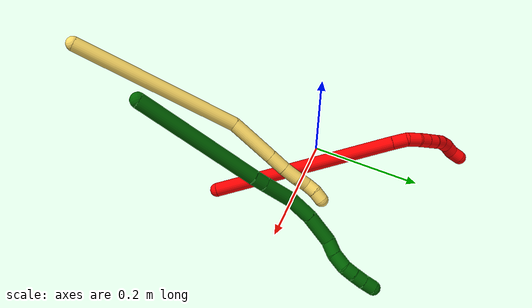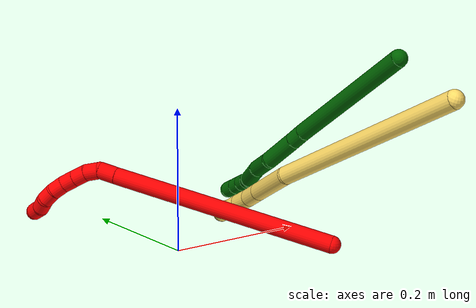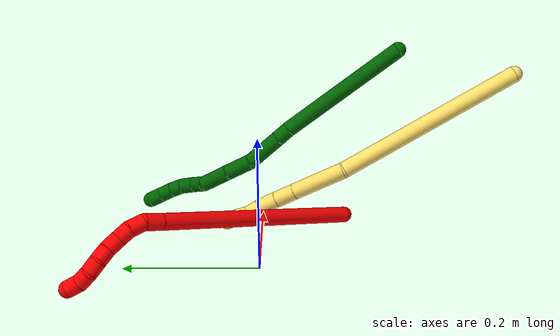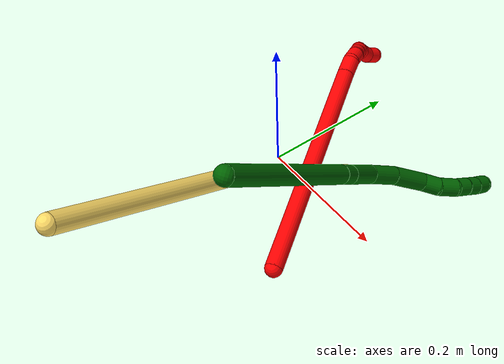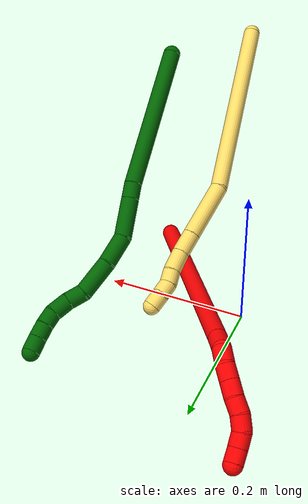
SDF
<sdf version="1.7">
 <world name="default">
  <model name="2">
   <static>0</static>
   <link name="2">
    <collision name="collision-cylinder-e_1_1_4">
     <pose>-0.092895 0.13589 -0.008558 -1.63369 -0.598713 0.635111</pose>
     <geometry><cylinder><radius>0.0125</radius><length>0.32966</length></cylinder></geometry>
     <surface>
      <friction><ode><mu>1.16</mu><mu2>1.16</mu2><slip1>0</slip1><slip2>0</slip2></ode></friction>
      <contact><ode><kp>1e+06</kp><kd>1</kd><max_vel>0</max_vel><min_depth>0.001</min_depth></ode></contact>
     </surface>
    </collision>
    <visual name="visual-cylinder-e_1_1_4">
     <pose>-0.092895 0.13589 -0.008558 -1.63369 -0.598713 0.635111</pose>
     <geometry><cylinder><radius>0.0125</radius><length>0.32966</length></cylinder></geometry>
     <material><ambient>1 0 0 1</ambient></material>
    </visual>
    <collision name="collision-cylinder-e_2_4_5">
     <pose>-0.19285 0.282997 -0.017759 -1.62815 -0.561037 0.592321</pose>
     <geometry><cylinder><radius>0.0125</radius><length>0.026538</length></cylinder></geometry>
     <surface>
      <friction><ode><mu>1.16</mu><mu2>1.16</mu2><slip1>0</slip1><slip2>0</slip2></ode></friction>
      <contact><ode><kp>1e+06</kp><kd>1</kd><max_vel>0</max_vel><min_depth>0.001</min_depth></ode></contact>
     </surface>
    </collision>
    <visual name="visual-cylinder-e_2_4_5">
     <pose>-0.19285 0.282997 -0.017759 -1.62815 -0.561037 0.592321</pose>
     <geometry><cylinder><radius>0.0125</radius><length>0.026538</length></cylinder></geometry>
     <material><ambient>1 0 0 1</ambient></material>
    </visual>
    <collision name="collision-cylinder-e_3_5_6">
     <pose>-0.205943 0.302505 -0.024125 -2.17489 -0.539646 0.969894</pose>
     <geometry><cylinder><radius>0.0125</radius><length>0.023486</length></cylinder></geometry>
     <surface>
      <friction><ode><mu>1.16</mu><mu2>1.16</mu2><slip1>0</slip1><slip2>0</slip2></ode></friction>
      <contact><ode><kp>1e+06</kp><kd>1</kd><max_vel>0</max_vel><min_depth>0.001</min_depth></ode></contact>
     </surface>
    </collision>
    <visual name="visual-cylinder-e_3_5_6">
     <pose>-0.205943 0.302505 -0.024125 -2.17489 -0.539646 0.969894</pose>
     <geometry><cylinder><radius>0.0125</radius><length>0.023486</length></cylinder></geometry>
     <material><ambient>1 0 0 1</ambient></material>
    </visual>
    <collision name="collision-cylinder-e_4_6_7">
     <pose>-0.217566 0.315826 -0.036661 -2.50567 -0.583335 1.47903</pose>
     <geometry><cylinder><radius>0.0125</radius><length>0.020294</length></cylinder></geometry>
     <surface>
      <friction><ode><mu>1.16</mu><mu2>1.16</mu2><slip1>0</slip1><slip2>0</slip2></ode></friction>
      <contact><ode><kp>1e+06</kp><kd>1</kd><max_vel>0</max_vel><min_depth>0.001</min_depth></ode></contact>
     </surface>
    </collision>
    <visual name="visual-cylinder-e_4_6_7">
     <pose>-0.217566 0.315826 -0.036661 -2.50567 -0.583335 1.47903</pose>
     <geometry><cylinder><radius>0.0125</radius><length>0.020294</length></cylinder></geometry>
     <material><ambient>1 0 0 1</ambient></material>
    </visual>
    <collision name="collision-cylinder-e_5_7_8">
     <pose>-0.228619 0.32574 -0.050294 -2.52005 -0.577308 1.49243</pose>
     <geometry><cylinder><radius>0.0125</radius><length>0.02002</length></cylinder></geometry>
     <surface>
      <friction><ode><mu>1.16</mu><mu2>1.16</mu2><slip1>0</slip1><slip2>0</slip2></ode></friction>
      <contact><ode><kp>1e+06</kp><kd>1</kd><max_vel>0</max_vel><min_depth>0.001</min_depth></ode></contact>
     </surface>
    </collision>
    <visual name="visual-cylinder-e_5_7_8">
     <pose>-0.228619 0.32574 -0.050294 -2.52005 -0.577308 1.49243</pose>
     <geometry><cylinder><radius>0.0125</radius><length>0.02002</length></cylinder></geometry>
     <material><ambient>1 0 0 1</ambient></material>
    </visual>
    <collision name="collision-cylinder-e_6_8_9">
     <pose>-0.239961 0.333999 -0.064465 -2.71121 -0.628417 1.95741</pose>
     <geometry><cylinder><radius>0.0125</radius><length>0.020001</length></cylinder></geometry>
     <surface>
      <friction><ode><mu>1.16</mu><mu2>1.16</mu2><slip1>0</slip1><slip2>0</slip2></ode></friction>
      <contact><ode><kp>1e+06</kp><kd>1</kd><max_vel>0</max_vel><min_depth>0.001</min_depth></ode></contact>
     </surface>
    </collision>
    <visual name="visual-cylinder-e_6_8_9">
     <pose>-0.239961 0.333999 -0.064465 -2.71121 -0.628417 1.95741</pose>
     <geometry><cylinder><radius>0.0125</radius><length>0.020001</length></cylinder></geometry>
     <material><ambient>1 0 0 1</ambient></material>
    </visual>
    <collision name="collision-cylinder-e_7_9_10">
     <pose>-0.249487 0.340876 -0.080445 -2.75609 -0.373338 1.53797</pose>
     <geometry><cylinder><radius>0.0125</radius><length>0.02</length></cylinder></geometry>
     <surface>
      <friction><ode><mu>1.16</mu><mu2>1.16</mu2><slip1>0</slip1><slip2>0</slip2></ode></friction>
      <contact><ode><kp>1e+06</kp><kd>1</kd><max_vel>0</max_vel><min_depth>0.001</min_depth></ode></contact>
     </surface>
    </collision>
    <visual name="visual-cylinder-e_7_9_10">
     <pose>-0.249487 0.340876 -0.080445 -2.75609 -0.373338 1.53797</pose>
     <geometry><cylinder><radius>0.0125</radius><length>0.02</length></cylinder></geometry>
     <material><ambient>1 0 0 1</ambient></material>
    </visual>
    <collision name="collision-cylinder-e_8_10_11">
     <pose>-0.253103 0.348627 -0.098126 -2.70272 0.003173 -0.014227</pose>
     <geometry><cylinder><radius>0.0125</radius><length>0.020001</length></cylinder></geometry>
     <surface>
      <friction><ode><mu>1.16</mu><mu2>1.16</mu2><slip1>0</slip1><slip2>0</slip2></ode></friction>
      <contact><ode><kp>1e+06</kp><kd>1</kd><max_vel>0</max_vel><min_depth>0.001</min_depth></ode></contact>
     </surface>
    </collision>
    <visual name="visual-cylinder-e_8_10_11">
     <pose>-0.253103 0.348627 -0.098126 -2.70272 0.003173 -0.014227</pose>
     <geometry><cylinder><radius>0.0125</radius><length>0.020001</length></cylinder></geometry>
     <material><ambient>1 0 0 1</ambient></material>
    </visual>
    <collision name="collision-cylinder-e_9_11_2">
     <pose>-0.25349 0.359837 -0.114346 -2.37087 -0.041908 0.103236</pose>
     <geometry><cylinder><radius>0.0125</radius><length>0.02</length></cylinder></geometry>
     <surface>
      <friction><ode><mu>1.16</mu><mu2>1.16</mu2><slip1>0</slip1><slip2>0</slip2></ode></friction>
      <contact><ode><kp>1e+06</kp><kd>1</kd><max_vel>0</max_vel><min_depth>0.001</min_depth></ode></contact>
     </surface>
    </collision>
    <visual name="visual-cylinder-e_9_11_2">
     <pose>-0.25349 0.359837 -0.114346 -2.37087 -0.041908 0.103236</pose>
     <geometry><cylinder><radius>0.0125</radius><length>0.02</length></cylinder></geometry>
     <material><ambient>1 0 0 1</ambient></material>
    </visual>
    <collision name="collision-sphere-2">
     <pose>-0.253909 0.366797 -0.121514 0 -0 0</pose>
     <geometry><sphere><radius>0.0125</radius></sphere></geometry>
     <surface>
      <friction><ode><mu>1.16</mu><mu2>1.16</mu2><slip1>0</slip1><slip2>0</slip2></ode></friction>
      <contact><ode><kp>1e+06</kp><kd>1</kd><max_vel>0</max_vel><min_depth>0.001</min_depth></ode></contact>
     </surface>
    </collision>
    <visual name="visual-sphere-2">
     <pose>-0.253909 0.366797 -0.121514 0 -0 0</pose>
     <geometry><sphere><radius>0.0125</radius></sphere></geometry>
     <material><ambient>1 0 0 1</ambient></material>
    </visual>
    <collision name="collision-sphere-11">
     <pose>-0.253071 0.352876 -0.107178 0 -0 0</pose>
     <geometry><sphere><radius>0.0125</radius></sphere></geometry>
     <surface>
      <friction><ode><mu>1.16</mu><mu2>1.16</mu2><slip1>0</slip1><slip2>0</slip2></ode></friction>
      <contact><ode><kp>1e+06</kp><kd>1</kd><max_vel>0</max_vel><min_depth>0.001</min_depth></ode></contact>
     </surface>
    </collision>
    <visual name="visual-sphere-11">
     <pose>-0.253071 0.352876 -0.107178 0 -0 0</pose>
     <geometry><sphere><radius>0.0125</radius></sphere></geometry>
     <material><ambient>1 0 0 1</ambient></material>
    </visual>
    <collision name="collision-sphere-10">
     <pose>-0.253134 0.344377 -0.089073 0 -0 0</pose>
     <geometry><sphere><radius>0.0125</radius></sphere></geometry>
     <surface>
      <friction><ode><mu>1.16</mu><mu2>1.16</mu2><slip1>0</slip1><slip2>0</slip2></ode></friction>
      <contact><ode><kp>1e+06</kp><kd>1</kd><max_vel>0</max_vel><min_depth>0.001</min_depth></ode></contact>
     </surface>
    </collision>
    <visual name="visual-sphere-10">
     <pose>-0.253134 0.344377 -0.089073 0 -0 0</pose>
     <geometry><sphere><radius>0.0125</radius></sphere></geometry>
     <material><ambient>1 0 0 1</ambient></material>
    </visual>
    <collision name="collision-sphere-9">
     <pose>-0.24584 0.337375 -0.071817 0 -0 0</pose>
     <geometry><sphere><radius>0.0125</radius></sphere></geometry>
     <surface>
      <friction><ode><mu>1.16</mu><mu2>1.16</mu2><slip1>0</slip1><slip2>0</slip2></ode></friction>
      <contact><ode><kp>1e+06</kp><kd>1</kd><max_vel>0</max_vel><min_depth>0.001</min_depth></ode></contact>
     </surface>
    </collision>
    <visual name="visual-sphere-9">
     <pose>-0.24584 0.337375 -0.071817 0 -0 0</pose>
     <geometry><sphere><radius>0.0125</radius></sphere></geometry>
     <material><ambient>1 0 0 1</ambient></material>
    </visual>
    <collision name="collision-sphere-4">
     <pose>-0.18579 0.271781 -0.017115 0 -0 0</pose>
     <geometry><sphere><radius>0.0125</radius></sphere></geometry>
     <surface>
      <friction><ode><mu>1.16</mu><mu2>1.16</mu2><slip1>0</slip1><slip2>0</slip2></ode></friction>
      <contact><ode><kp>1e+06</kp><kd>1</kd><max_vel>0</max_vel><min_depth>0.001</min_depth></ode></contact>
     </surface>
    </collision>
    <visual name="visual-sphere-4">
     <pose>-0.18579 0.271781 -0.017115 0 -0 0</pose>
     <geometry><sphere><radius>0.0125</radius></sphere></geometry>
     <material><ambient>1 0 0 1</ambient></material>
    </visual>
    <collision name="collision-sphere-1">
     <geometry><sphere><radius>0.0125</radius></sphere></geometry>
     <surface>
      <friction><ode><mu>1.16</mu><mu2>1.16</mu2><slip1>0</slip1><slip2>0</slip2></ode></friction>
      <contact><ode><kp>1e+06</kp><kd>1</kd><max_vel>0</max_vel><min_depth>0.001</min_depth></ode></contact>
     </surface>
    </collision>
    <visual name="visual-sphere-1">
     <geometry><sphere><radius>0.0125</radius></sphere></geometry>
     <material><ambient>1 0 0 1</ambient></material>
    </visual>
    <collision name="collision-sphere-8">
     <pose>-0.234082 0.330624 -0.057113 0 -0 0</pose>
     <geometry><sphere><radius>0.0125</radius></sphere></geometry>
     <surface>
      <friction><ode><mu>1.16</mu><mu2>1.16</mu2><slip1>0</slip1><slip2>0</slip2></ode></friction>
      <contact><ode><kp>1e+06</kp><kd>1</kd><max_vel>0</max_vel><min_depth>0.001</min_depth></ode></contact>
     </surface>
    </collision>
    <visual name="visual-sphere-8">
     <pose>-0.234082 0.330624 -0.057113 0 -0 0</pose>
     <geometry><sphere><radius>0.0125</radius></sphere></geometry>
     <material><ambient>1 0 0 1</ambient></material>
    </visual>
    <collision name="collision-sphere-5">
     <pose>-0.19991 0.294214 -0.018403 0 -0 0</pose>
     <geometry><sphere><radius>0.0125</radius></sphere></geometry>
     <surface>
      <friction><ode><mu>1.16</mu><mu2>1.16</mu2><slip1>0</slip1><slip2>0</slip2></ode></friction>
      <contact><ode><kp>1e+06</kp><kd>1</kd><max_vel>0</max_vel><min_depth>0.001</min_depth></ode></contact>
     </surface>
    </collision>
    <visual name="visual-sphere-5">
     <pose>-0.19991 0.294214 -0.018403 0 -0 0</pose>
     <geometry><sphere><radius>0.0125</radius></sphere></geometry>
     <material><ambient>1 0 0 1</ambient></material>
    </visual>
    <collision name="collision-sphere-6">
     <pose>-0.211977 0.310796 -0.029848 0 -0 0</pose>
     <geometry><sphere><radius>0.0125</radius></sphere></geometry>
     <surface>
      <friction><ode><mu>1.16</mu><mu2>1.16</mu2><slip1>0</slip1><slip2>0</slip2></ode></friction>
      <contact><ode><kp>1e+06</kp><kd>1</kd><max_vel>0</max_vel><min_depth>0.001</min_depth></ode></contact>
     </surface>
    </collision>
    <visual name="visual-sphere-6">
     <pose>-0.211977 0.310796 -0.029848 0 -0 0</pose>
     <geometry><sphere><radius>0.0125</radius></sphere></geometry>
     <material><ambient>1 0 0 1</ambient></material>
    </visual>
    <collision name="collision-sphere-7">
     <pose>-0.223155 0.320856 -0.043475 0 -0 0</pose>
     <geometry><sphere><radius>0.0125</radius></sphere></geometry>
     <surface>
      <friction><ode><mu>1.16</mu><mu2>1.16</mu2><slip1>0</slip1><slip2>0</slip2></ode></friction>
      <contact><ode><kp>1e+06</kp><kd>1</kd><max_vel>0</max_vel><min_depth>0.001</min_depth></ode></contact>
     </surface>
    </collision>
    <visual name="visual-sphere-7">
     <pose>-0.223155 0.320856 -0.043475 0 -0 0</pose>
     <geometry><sphere><radius>0.0125</radius></sphere></geometry>
     <material><ambient>1 0 0 1</ambient></material>
    </visual>
    <inertial>
     <pose>-0.138984 0.200021 -0.025515 0 -0 0</pose>
     <mass>0.5</mass>
     <inertia>
      <ixx>0.003457</ixx>
      <ixy>0</ixy>
      <ixz>0</ixz>
      <iyy>0.002355</iyy>
      <iyz>0</iyz>
      <izz>-0.000794</izz>
     </inertia>
    </inertial>
   </link>
   <pose>0.164917 -0.131739 0.011496 0.297833 0.033577 -0.021047</pose>
  </model>
  <model name="5">
   <static>0</static>
   <link name="5">
    <collision name="collision-cylinder-e_1_1_4">
     <pose>-0.004096 0.100109 -0.106374 -2.38652 -0.028032 0.070664</pose>
     <geometry><cylinder><radius>0.0125</radius><length>0.292261</length></cylinder></geometry>
     <surface>
      <friction><ode><mu>1.16</mu><mu2>1.16</mu2><slip1>0</slip1><slip2>0</slip2></ode></friction>
      <contact><ode><kp>1e+06</kp><kd>1</kd><max_vel>0</max_vel><min_depth>0.001</min_depth></ode></contact>
     </surface>
    </collision>
    <visual name="visual-cylinder-e_1_1_4">
     <pose>-0.004096 0.100109 -0.106374 -2.38652 -0.028032 0.070664</pose>
     <geometry><cylinder><radius>0.0125</radius><length>0.292261</length></cylinder></geometry>
     <material><ambient>1 0.858824 0.4 1</ambient></material>
    </visual>
    <collision name="collision-cylinder-e_2_4_5">
     <pose>0.003389 0.228441 -0.24232 -2.37955 0.276078 -0.667625</pose>
     <geometry><cylinder><radius>0.0125</radius><length>0.084973</length></cylinder></geometry>
     <surface>
      <friction><ode><mu>1.16</mu><mu2>1.16</mu2><slip1>0</slip1><slip2>0</slip2></ode></friction>
      <contact><ode><kp>1e+06</kp><kd>1</kd><max_vel>0</max_vel><min_depth>0.001</min_depth></ode></contact>
     </surface>
    </collision>
    <visual name="visual-cylinder-e_2_4_5">
     <pose>0.003389 0.228441 -0.24232 -2.37955 0.276078 -0.667625</pose>
     <geometry><cylinder><radius>0.0125</radius><length>0.084973</length></cylinder></geometry>
     <material><ambient>1 0.858824 0.4 1</ambient></material>
    </visual>
    <collision name="collision-cylinder-e_3_5_6">
     <pose>0.019423 0.26731 -0.283203 -2.38637 0.27916 -0.680834</pose>
     <geometry><cylinder><radius>0.0125</radius><length>0.032319</length></cylinder></geometry>
     <surface>
      <friction><ode><mu>1.16</mu><mu2>1.16</mu2><slip1>0</slip1><slip2>0</slip2></ode></friction>
      <contact><ode><kp>1e+06</kp><kd>1</kd><max_vel>0</max_vel><min_depth>0.001</min_depth></ode></contact>
     </surface>
    </collision>
    <visual name="visual-cylinder-e_3_5_6">
     <pose>0.019423 0.26731 -0.283203 -2.38637 0.27916 -0.680834</pose>
     <geometry><cylinder><radius>0.0125</radius><length>0.032319</length></cylinder></geometry>
     <material><ambient>1 0.858824 0.4 1</ambient></material>
    </visual>
    <collision name="collision-cylinder-e_4_6_7">
     <pose>0.026805 0.28834 -0.305185 -2.36999 0.194245 -0.470865</pose>
     <geometry><cylinder><radius>0.0125</radius><length>0.030348</length></cylinder></geometry>
     <surface>
      <friction><ode><mu>1.16</mu><mu2>1.16</mu2><slip1>0</slip1><slip2>0</slip2></ode></friction>
      <contact><ode><kp>1e+06</kp><kd>1</kd><max_vel>0</max_vel><min_depth>0.001</min_depth></ode></contact>
     </surface>
    </collision>
    <visual name="visual-cylinder-e_4_6_7">
     <pose>0.026805 0.28834 -0.305185 -2.36999 0.194245 -0.470865</pose>
     <geometry><cylinder><radius>0.0125</radius><length>0.030348</length></cylinder></geometry>
     <material><ambient>1 0.858824 0.4 1</ambient></material>
    </visual>
    <collision name="collision-cylinder-e_5_7_8">
     <pose>0.03018 0.305056 -0.32364 -2.45832 0.044441 -0.12484</pose>
     <geometry><cylinder><radius>0.0125</radius><length>0.020089</length></cylinder></geometry>
     <surface>
      <friction><ode><mu>1.16</mu><mu2>1.16</mu2><slip1>0</slip1><slip2>0</slip2></ode></friction>
      <contact><ode><kp>1e+06</kp><kd>1</kd><max_vel>0</max_vel><min_depth>0.001</min_depth></ode></contact>
     </surface>
    </collision>
    <visual name="visual-cylinder-e_5_7_8">
     <pose>0.03018 0.305056 -0.32364 -2.45832 0.044441 -0.12484</pose>
     <geometry><cylinder><radius>0.0125</radius><length>0.020089</length></cylinder></geometry>
     <material><ambient>1 0.858824 0.4 1</ambient></material>
    </visual>
    <collision name="collision-cylinder-e_6_8_9">
     <pose>0.033663 0.318893 -0.337302 -2.23568 0.308399 -0.618242</pose>
     <geometry><cylinder><radius>0.0125</radius><length>0.020006</length></cylinder></geometry>
     <surface>
      <friction><ode><mu>1.16</mu><mu2>1.16</mu2><slip1>0</slip1><slip2>0</slip2></ode></friction>
      <contact><ode><kp>1e+06</kp><kd>1</kd><max_vel>0</max_vel><min_depth>0.001</min_depth></ode></contact>
     </surface>
    </collision>
    <visual name="visual-cylinder-e_6_8_9">
     <pose>0.033663 0.318893 -0.337302 -2.23568 0.308399 -0.618242</pose>
     <geometry><cylinder><radius>0.0125</radius><length>0.020006</length></cylinder></geometry>
     <material><ambient>1 0.858824 0.4 1</ambient></material>
    </visual>
    <collision name="collision-cylinder-e_7_9_2">
     <pose>0.040944 0.332162 -0.350164 -2.45102 0.438363 -1.10898</pose>
     <geometry><cylinder><radius>0.0125</radius><length>0.020004</length></cylinder></geometry>
     <surface>
      <friction><ode><mu>1.16</mu><mu2>1.16</mu2><slip1>0</slip1><slip2>0</slip2></ode></friction>
      <contact><ode><kp>1e+06</kp><kd>1</kd><max_vel>0</max_vel><min_depth>0.001</min_depth></ode></contact>
     </surface>
    </collision>
    <visual name="visual-cylinder-e_7_9_2">
     <pose>0.040944 0.332162 -0.350164 -2.45102 0.438363 -1.10898</pose>
     <geometry><cylinder><radius>0.0125</radius><length>0.020004</length></cylinder></geometry>
     <material><ambient>1 0.858824 0.4 1</ambient></material>
    </visual>
    <collision name="collision-sphere-2">
     <pose>0.04519 0.337931 -0.357145 0 -0 0</pose>
     <geometry><sphere><radius>0.0125</radius></sphere></geometry>
     <surface>
      <friction><ode><mu>1.16</mu><mu2>1.16</mu2><slip1>0</slip1><slip2>0</slip2></ode></friction>
      <contact><ode><kp>1e+06</kp><kd>1</kd><max_vel>0</max_vel><min_depth>0.001</min_depth></ode></contact>
     </surface>
    </collision>
    <visual name="visual-sphere-2">
     <pose>0.04519 0.337931 -0.357145 0 -0 0</pose>
     <geometry><sphere><radius>0.0125</radius></sphere></geometry>
     <material><ambient>1 0.858824 0.4 1</ambient></material>
    </visual>
    <collision name="collision-sphere-9">
     <pose>0.036699 0.326393 -0.343182 0 -0 0</pose>
     <geometry><sphere><radius>0.0125</radius></sphere></geometry>
     <surface>
      <friction><ode><mu>1.16</mu><mu2>1.16</mu2><slip1>0</slip1><slip2>0</slip2></ode></friction>
      <contact><ode><kp>1e+06</kp><kd>1</kd><max_vel>0</max_vel><min_depth>0.001</min_depth></ode></contact>
     </surface>
    </collision>
    <visual name="visual-sphere-9">
     <pose>0.036699 0.326393 -0.343182 0 -0 0</pose>
     <geometry><sphere><radius>0.0125</radius></sphere></geometry>
     <material><ambient>1 0.858824 0.4 1</ambient></material>
    </visual>
    <collision name="collision-sphere-4">
     <pose>-0.008192 0.200219 -0.212748 0 -0 0</pose>
     <geometry><sphere><radius>0.0125</radius></sphere></geometry>
     <surface>
      <friction><ode><mu>1.16</mu><mu2>1.16</mu2><slip1>0</slip1><slip2>0</slip2></ode></friction>
      <contact><ode><kp>1e+06</kp><kd>1</kd><max_vel>0</max_vel><min_depth>0.001</min_depth></ode></contact>
     </surface>
    </collision>
    <visual name="visual-sphere-4">
     <pose>-0.008192 0.200219 -0.212748 0 -0 0</pose>
     <geometry><sphere><radius>0.0125</radius></sphere></geometry>
     <material><ambient>1 0.858824 0.4 1</ambient></material>
    </visual>
    <collision name="collision-sphere-1">
     <geometry><sphere><radius>0.0125</radius></sphere></geometry>
     <surface>
      <friction><ode><mu>1.16</mu><mu2>1.16</mu2><slip1>0</slip1><slip2>0</slip2></ode></friction>
      <contact><ode><kp>1e+06</kp><kd>1</kd><max_vel>0</max_vel><min_depth>0.001</min_depth></ode></contact>
     </surface>
    </collision>
    <visual name="visual-sphere-1">
     <geometry><sphere><radius>0.0125</radius></sphere></geometry>
     <material><ambient>1 0.858824 0.4 1</ambient></material>
    </visual>
    <collision name="collision-sphere-8">
     <pose>0.030627 0.311392 -0.331422 0 -0 0</pose>
     <geometry><sphere><radius>0.0125</radius></sphere></geometry>
     <surface>
      <friction><ode><mu>1.16</mu><mu2>1.16</mu2><slip1>0</slip1><slip2>0</slip2></ode></friction>
      <contact><ode><kp>1e+06</kp><kd>1</kd><max_vel>0</max_vel><min_depth>0.001</min_depth></ode></contact>
     </surface>
    </collision>
    <visual name="visual-sphere-8">
     <pose>0.030627 0.311392 -0.331422 0 -0 0</pose>
     <geometry><sphere><radius>0.0125</radius></sphere></geometry>
     <material><ambient>1 0.858824 0.4 1</ambient></material>
    </visual>
    <collision name="collision-sphere-5">
     <pose>0.014971 0.256662 -0.271892 0 -0 0</pose>
     <geometry><sphere><radius>0.0125</radius></sphere></geometry>
     <surface>
      <friction><ode><mu>1.16</mu><mu2>1.16</mu2><slip1>0</slip1><slip2>0</slip2></ode></friction>
      <contact><ode><kp>1e+06</kp><kd>1</kd><max_vel>0</max_vel><min_depth>0.001</min_depth></ode></contact>
     </surface>
    </collision>
    <visual name="visual-sphere-5">
     <pose>0.014971 0.256662 -0.271892 0 -0 0</pose>
     <geometry><sphere><radius>0.0125</radius></sphere></geometry>
     <material><ambient>1 0.858824 0.4 1</ambient></material>
    </visual>
    <collision name="collision-sphere-6">
     <pose>0.023876 0.277958 -0.294513 0 -0 0</pose>
     <geometry><sphere><radius>0.0125</radius></sphere></geometry>
     <surface>
      <friction><ode><mu>1.16</mu><mu2>1.16</mu2><slip1>0</slip1><slip2>0</slip2></ode></friction>
      <contact><ode><kp>1e+06</kp><kd>1</kd><max_vel>0</max_vel><min_depth>0.001</min_depth></ode></contact>
     </surface>
    </collision>
    <visual name="visual-sphere-6">
     <pose>0.023876 0.277958 -0.294513 0 -0 0</pose>
     <geometry><sphere><radius>0.0125</radius></sphere></geometry>
     <material><ambient>1 0.858824 0.4 1</ambient></material>
    </visual>
    <collision name="collision-sphere-7">
     <pose>0.029734 0.298721 -0.315858 0 -0 0</pose>
     <geometry><sphere><radius>0.0125</radius></sphere></geometry>
     <surface>
      <friction><ode><mu>1.16</mu><mu2>1.16</mu2><slip1>0</slip1><slip2>0</slip2></ode></friction>
      <contact><ode><kp>1e+06</kp><kd>1</kd><max_vel>0</max_vel><min_depth>0.001</min_depth></ode></contact>
     </surface>
    </collision>
    <visual name="visual-sphere-7">
     <pose>0.029734 0.298721 -0.315858 0 -0 0</pose>
     <geometry><sphere><radius>0.0125</radius></sphere></geometry>
     <material><ambient>1 0.858824 0.4 1</ambient></material>
    </visual>
    <inertial>
     <pose>0.005262 0.170423 -0.180697 0 -0 0</pose>
     <mass>0.5</mass>
     <inertia>
      <ixx>0.002249</ixx>
      <ixy>0</ixy>
      <ixz>0</ixz>
      <iyy>-0.001411</iyy>
      <iyz>0</iyz>
      <izz>-0.001464</izz>
     </inertia>
    </inertial>
   </link>
   <pose>0.129913 -0.380864 0.256217 0.326145 0.089652 0.091641</pose>
  </model>
  <model name="6">
   <static>0</static>
   <link name="6">
    <collision name="collision-cylinder-e_1_1_4">
     <pose>0.076473 -0.034663 -0.065926 2.65754 0.798578 2.08288</pose>
     <geometry><cylinder><radius>0.0125</radius><length>0.213504</length></cylinder></geometry>
     <surface>
      <friction><ode><mu>1.16</mu><mu2>1.16</mu2><slip1>0</slip1><slip2>0</slip2></ode></friction>
      <contact><ode><kp>1e+06</kp><kd>1</kd><max_vel>0</max_vel><min_depth>0.001</min_depth></ode></contact>
     </surface>
    </collision>
    <visual name="visual-cylinder-e_1_1_4">
     <pose>0.076473 -0.034663 -0.065926 2.65754 0.798578 2.08288</pose>
     <geometry><cylinder><radius>0.0125</radius><length>0.213504</length></cylinder></geometry>
     <material><ambient>0 0.392157 0.003922 1</ambient></material>
    </visual>
    <collision name="collision-cylinder-e_2_4_5">
     <pose>0.161981 -0.072813 -0.138131 2.63445 0.899188 2.15592</pose>
     <geometry><cylinder><radius>0.0125</radius><length>0.023083</length></cylinder></geometry>
     <surface>
      <friction><ode><mu>1.16</mu><mu2>1.16</mu2><slip1>0</slip1><slip2>0</slip2></ode></friction>
      <contact><ode><kp>1e+06</kp><kd>1</kd><max_vel>0</max_vel><min_depth>0.001</min_depth></ode></contact>
     </surface>
    </collision>
    <visual name="visual-cylinder-e_2_4_5">
     <pose>0.161981 -0.072813 -0.138131 2.63445 0.899188 2.15592</pose>
     <geometry><cylinder><radius>0.0125</radius><length>0.023083</length></cylinder></geometry>
     <material><ambient>0 0.392157 0.003922 1</ambient></material>
    </visual>
    <collision name="collision-cylinder-e_3_5_6">
     <pose>0.193055 -0.085243 -0.159742 2.61365 0.892754 2.11342</pose>
     <geometry><cylinder><radius>0.0125</radius><length>0.056597</length></cylinder></geometry>
     <surface>
      <friction><ode><mu>1.16</mu><mu2>1.16</mu2><slip1>0</slip1><slip2>0</slip2></ode></friction>
      <contact><ode><kp>1e+06</kp><kd>1</kd><max_vel>0</max_vel><min_depth>0.001</min_depth></ode></contact>
     </surface>
    </collision>
    <visual name="visual-cylinder-e_3_5_6">
     <pose>0.193055 -0.085243 -0.159742 2.61365 0.892754 2.11342</pose>
     <geometry><cylinder><radius>0.0125</radius><length>0.056597</length></cylinder></geometry>
     <material><ambient>0 0.392157 0.003922 1</ambient></material>
    </visual>
    <collision name="collision-cylinder-e_4_6_7">
     <pose>0.226531 -0.100687 -0.192244 2.77958 0.55715 2.00316</pose>
     <geometry><cylinder><radius>0.0125</radius><length>0.043258</length></cylinder></geometry>
     <surface>
      <friction><ode><mu>1.16</mu><mu2>1.16</mu2><slip1>0</slip1><slip2>0</slip2></ode></friction>
      <contact><ode><kp>1e+06</kp><kd>1</kd><max_vel>0</max_vel><min_depth>0.001</min_depth></ode></contact>
     </surface>
    </collision>
    <visual name="visual-cylinder-e_4_6_7">
     <pose>0.226531 -0.100687 -0.192244 2.77958 0.55715 2.00316</pose>
     <geometry><cylinder><radius>0.0125</radius><length>0.043258</length></cylinder></geometry>
     <material><ambient>0 0.392157 0.003922 1</ambient></material>
    </visual>
    <collision name="collision-cylinder-e_5_7_8">
     <pose>0.249956 -0.111465 -0.231681 2.95187 0.486315 2.40907</pose>
     <geometry><cylinder><radius>0.0125</radius><length>0.051298</length></cylinder></geometry>
     <surface>
      <friction><ode><mu>1.16</mu><mu2>1.16</mu2><slip1>0</slip1><slip2>0</slip2></ode></friction>
      <contact><ode><kp>1e+06</kp><kd>1</kd><max_vel>0</max_vel><min_depth>0.001</min_depth></ode></contact>
     </surface>
    </collision>
    <visual name="visual-cylinder-e_5_7_8">
     <pose>0.249956 -0.111465 -0.231681 2.95187 0.486315 2.40907</pose>
     <geometry><cylinder><radius>0.0125</radius><length>0.051298</length></cylinder></geometry>
     <material><ambient>0 0.392157 0.003922 1</ambient></material>
    </visual>
    <collision name="collision-cylinder-e_6_8_9">
     <pose>0.263397 -0.116177 -0.266222 3.10615 0.117835 2.55783</pose>
     <geometry><cylinder><radius>0.0125</radius><length>0.024731</length></cylinder></geometry>
     <surface>
      <friction><ode><mu>1.16</mu><mu2>1.16</mu2><slip1>0</slip1><slip2>0</slip2></ode></friction>
      <contact><ode><kp>1e+06</kp><kd>1</kd><max_vel>0</max_vel><min_depth>0.001</min_depth></ode></contact>
     </surface>
    </collision>
    <visual name="visual-cylinder-e_6_8_9">
     <pose>0.263397 -0.116177 -0.266222 3.10615 0.117835 2.55783</pose>
     <geometry><cylinder><radius>0.0125</radius><length>0.024731</length></cylinder></geometry>
     <material><ambient>0 0.392157 0.003922 1</ambient></material>
    </visual>
    <collision name="collision-cylinder-e_7_9_10">
     <pose>0.267747 -0.120118 -0.290808 2.86423 0.222454 1.34969</pose>
     <geometry><cylinder><radius>0.0125</radius><length>0.026254</length></cylinder></geometry>
     <surface>
      <friction><ode><mu>1.16</mu><mu2>1.16</mu2><slip1>0</slip1><slip2>0</slip2></ode></friction>
      <contact><ode><kp>1e+06</kp><kd>1</kd><max_vel>0</max_vel><min_depth>0.001</min_depth></ode></contact>
     </surface>
    </collision>
    <visual name="visual-cylinder-e_7_9_10">
     <pose>0.267747 -0.120118 -0.290808 2.86423 0.222454 1.34969</pose>
     <geometry><cylinder><radius>0.0125</radius><length>0.026254</length></cylinder></geometry>
     <material><ambient>0 0.392157 0.003922 1</ambient></material>
    </visual>
    <collision name="collision-cylinder-e_8_10_11">
     <pose>0.275402 -0.127551 -0.311087 2.68349 0.491983 1.64484</pose>
     <geometry><cylinder><radius>0.0125</radius><length>0.020151</length></cylinder></geometry>
     <surface>
      <friction><ode><mu>1.16</mu><mu2>1.16</mu2><slip1>0</slip1><slip2>0</slip2></ode></friction>
      <contact><ode><kp>1e+06</kp><kd>1</kd><max_vel>0</max_vel><min_depth>0.001</min_depth></ode></contact>
     </surface>
    </collision>
    <visual name="visual-cylinder-e_8_10_11">
     <pose>0.275402 -0.127551 -0.311087 2.68349 0.491983 1.64484</pose>
     <geometry><cylinder><radius>0.0125</radius><length>0.020151</length></cylinder></geometry>
     <material><ambient>0 0.392157 0.003922 1</ambient></material>
    </visual>
    <collision name="collision-cylinder-e_9_11_12">
     <pose>0.285889 -0.135304 -0.326565 2.67066 0.596671 1.81651</pose>
     <geometry><cylinder><radius>0.0125</radius><length>0.020384</length></cylinder></geometry>
     <surface>
      <friction><ode><mu>1.16</mu><mu2>1.16</mu2><slip1>0</slip1><slip2>0</slip2></ode></friction>
      <contact><ode><kp>1e+06</kp><kd>1</kd><max_vel>0</max_vel><min_depth>0.001</min_depth></ode></contact>
     </surface>
    </collision>
    <visual name="visual-cylinder-e_9_11_12">
     <pose>0.285889 -0.135304 -0.326565 2.67066 0.596671 1.81651</pose>
     <geometry><cylinder><radius>0.0125</radius><length>0.020384</length></cylinder></geometry>
     <material><ambient>0 0.392157 0.003922 1</ambient></material>
    </visual>
    <collision name="collision-cylinder-e_10_12_2">
     <pose>0.297605 -0.14354 -0.341303 2.59339 0.615805 1.6936</pose>
     <geometry><cylinder><radius>0.0125</radius><length>0.020739</length></cylinder></geometry>
     <surface>
      <friction><ode><mu>1.16</mu><mu2>1.16</mu2><slip1>0</slip1><slip2>0</slip2></ode></friction>
      <contact><ode><kp>1e+06</kp><kd>1</kd><max_vel>0</max_vel><min_depth>0.001</min_depth></ode></contact>
     </surface>
    </collision>
    <visual name="visual-cylinder-e_10_12_2">
     <pose>0.297605 -0.14354 -0.341303 2.59339 0.615805 1.6936</pose>
     <geometry><cylinder><radius>0.0125</radius><length>0.020739</length></cylinder></geometry>
     <material><ambient>0 0.392157 0.003922 1</ambient></material>
    </visual>
    <collision name="collision-sphere-2">
     <pose>0.303595 -0.147952 -0.348528 0 -0 0</pose>
     <geometry><sphere><radius>0.0125</radius></sphere></geometry>
     <surface>
      <friction><ode><mu>1.16</mu><mu2>1.16</mu2><slip1>0</slip1><slip2>0</slip2></ode></friction>
      <contact><ode><kp>1e+06</kp><kd>1</kd><max_vel>0</max_vel><min_depth>0.001</min_depth></ode></contact>
     </surface>
    </collision>
    <visual name="visual-sphere-2">
     <pose>0.303595 -0.147952 -0.348528 0 -0 0</pose>
     <geometry><sphere><radius>0.0125</radius></sphere></geometry>
     <material><ambient>0 0.392157 0.003922 1</ambient></material>
    </visual>
    <collision name="collision-sphere-12">
     <pose>0.291615 -0.139129 -0.334079 0 -0 0</pose>
     <geometry><sphere><radius>0.0125</radius></sphere></geometry>
     <surface>
      <friction><ode><mu>1.16</mu><mu2>1.16</mu2><slip1>0</slip1><slip2>0</slip2></ode></friction>
      <contact><ode><kp>1e+06</kp><kd>1</kd><max_vel>0</max_vel><min_depth>0.001</min_depth></ode></contact>
     </surface>
    </collision>
    <visual name="visual-sphere-12">
     <pose>0.291615 -0.139129 -0.334079 0 -0 0</pose>
     <geometry><sphere><radius>0.0125</radius></sphere></geometry>
     <material><ambient>0 0.392157 0.003922 1</ambient></material>
    </visual>
    <collision name="collision-sphere-11">
     <pose>0.280162 -0.131478 -0.319052 0 -0 0</pose>
     <geometry><sphere><radius>0.0125</radius></sphere></geometry>
     <surface>
      <friction><ode><mu>1.16</mu><mu2>1.16</mu2><slip1>0</slip1><slip2>0</slip2></ode></friction>
      <contact><ode><kp>1e+06</kp><kd>1</kd><max_vel>0</max_vel><min_depth>0.001</min_depth></ode></contact>
     </surface>
    </collision>
    <visual name="visual-sphere-11">
     <pose>0.280162 -0.131478 -0.319052 0 -0 0</pose>
     <geometry><sphere><radius>0.0125</radius></sphere></geometry>
     <material><ambient>0 0.392157 0.003922 1</ambient></material>
    </visual>
    <collision name="collision-sphere-10">
     <pose>0.270643 -0.123624 -0.303123 0 -0 0</pose>
     <geometry><sphere><radius>0.0125</radius></sphere></geometry>
     <surface>
      <friction><ode><mu>1.16</mu><mu2>1.16</mu2><slip1>0</slip1><slip2>0</slip2></ode></friction>
      <contact><ode><kp>1e+06</kp><kd>1</kd><max_vel>0</max_vel><min_depth>0.001</min_depth></ode></contact>
     </surface>
    </collision>
    <visual name="visual-sphere-10">
     <pose>0.270643 -0.123624 -0.303123 0 -0 0</pose>
     <geometry><sphere><radius>0.0125</radius></sphere></geometry>
     <material><ambient>0 0.392157 0.003922 1</ambient></material>
    </visual>
    <collision name="collision-sphere-9">
     <pose>0.264851 -0.116612 -0.278494 0 -0 0</pose>
     <geometry><sphere><radius>0.0125</radius></sphere></geometry>
     <surface>
      <friction><ode><mu>1.16</mu><mu2>1.16</mu2><slip1>0</slip1><slip2>0</slip2></ode></friction>
      <contact><ode><kp>1e+06</kp><kd>1</kd><max_vel>0</max_vel><min_depth>0.001</min_depth></ode></contact>
     </surface>
    </collision>
    <visual name="visual-sphere-9">
     <pose>0.264851 -0.116612 -0.278494 0 -0 0</pose>
     <geometry><sphere><radius>0.0125</radius></sphere></geometry>
     <material><ambient>0 0.392157 0.003922 1</ambient></material>
    </visual>
    <collision name="collision-sphere-4">
     <pose>0.152946 -0.069325 -0.131853 0 -0 0</pose>
     <geometry><sphere><radius>0.0125</radius></sphere></geometry>
     <surface>
      <friction><ode><mu>1.16</mu><mu2>1.16</mu2><slip1>0</slip1><slip2>0</slip2></ode></friction>
      <contact><ode><kp>1e+06</kp><kd>1</kd><max_vel>0</max_vel><min_depth>0.001</min_depth></ode></contact>
     </surface>
    </collision>
    <visual name="visual-sphere-4">
     <pose>0.152946 -0.069325 -0.131853 0 -0 0</pose>
     <geometry><sphere><radius>0.0125</radius></sphere></geometry>
     <material><ambient>0 0.392157 0.003922 1</ambient></material>
    </visual>
    <collision name="collision-sphere-1">
     <geometry><sphere><radius>0.0125</radius></sphere></geometry>
     <surface>
      <friction><ode><mu>1.16</mu><mu2>1.16</mu2><slip1>0</slip1><slip2>0</slip2></ode></friction>
      <contact><ode><kp>1e+06</kp><kd>1</kd><max_vel>0</max_vel><min_depth>0.001</min_depth></ode></contact>
     </surface>
    </collision>
    <visual name="visual-sphere-1">
     <geometry><sphere><radius>0.0125</radius></sphere></geometry>
     <material><ambient>0 0.392157 0.003922 1</ambient></material>
    </visual>
    <collision name="collision-sphere-8">
     <pose>0.261943 -0.115742 -0.25395 0 -0 0</pose>
     <geometry><sphere><radius>0.0125</radius></sphere></geometry>
     <surface>
      <friction><ode><mu>1.16</mu><mu2>1.16</mu2><slip1>0</slip1><slip2>0</slip2></ode></friction>
      <contact><ode><kp>1e+06</kp><kd>1</kd><max_vel>0</max_vel><min_depth>0.001</min_depth></ode></contact>
     </surface>
    </collision>
    <visual name="visual-sphere-8">
     <pose>0.261943 -0.115742 -0.25395 0 -0 0</pose>
     <geometry><sphere><radius>0.0125</radius></sphere></geometry>
     <material><ambient>0 0.392157 0.003922 1</ambient></material>
    </visual>
    <collision name="collision-sphere-5">
     <pose>0.171016 -0.076301 -0.144408 0 -0 0</pose>
     <geometry><sphere><radius>0.0125</radius></sphere></geometry>
     <surface>
      <friction><ode><mu>1.16</mu><mu2>1.16</mu2><slip1>0</slip1><slip2>0</slip2></ode></friction>
      <contact><ode><kp>1e+06</kp><kd>1</kd><max_vel>0</max_vel><min_depth>0.001</min_depth></ode></contact>
     </surface>
    </collision>
    <visual name="visual-sphere-5">
     <pose>0.171016 -0.076301 -0.144408 0 -0 0</pose>
     <geometry><sphere><radius>0.0125</radius></sphere></geometry>
     <material><ambient>0 0.392157 0.003922 1</ambient></material>
    </visual>
    <collision name="collision-sphere-6">
     <pose>0.215094 -0.094185 -0.175076 0 -0 0</pose>
     <geometry><sphere><radius>0.0125</radius></sphere></geometry>
     <surface>
      <friction><ode><mu>1.16</mu><mu2>1.16</mu2><slip1>0</slip1><slip2>0</slip2></ode></friction>
      <contact><ode><kp>1e+06</kp><kd>1</kd><max_vel>0</max_vel><min_depth>0.001</min_depth></ode></contact>
     </surface>
    </collision>
    <visual name="visual-sphere-6">
     <pose>0.215094 -0.094185 -0.175076 0 -0 0</pose>
     <geometry><sphere><radius>0.0125</radius></sphere></geometry>
     <material><ambient>0 0.392157 0.003922 1</ambient></material>
    </visual>
    <collision name="collision-sphere-7">
     <pose>0.237968 -0.107189 -0.209413 0 -0 0</pose>
     <geometry><sphere><radius>0.0125</radius></sphere></geometry>
     <surface>
      <friction><ode><mu>1.16</mu><mu2>1.16</mu2><slip1>0</slip1><slip2>0</slip2></ode></friction>
      <contact><ode><kp>1e+06</kp><kd>1</kd><max_vel>0</max_vel><min_depth>0.001</min_depth></ode></contact>
     </surface>
    </collision>
    <visual name="visual-sphere-7">
     <pose>0.237968 -0.107189 -0.209413 0 -0 0</pose>
     <geometry><sphere><radius>0.0125</radius></sphere></geometry>
     <material><ambient>0 0.392157 0.003922 1</ambient></material>
    </visual>
    <inertial>
     <pose>0.169415 -0.076623 -0.161457 0 -0 0</pose>
     <mass>0.5</mass>
     <inertia>
      <ixx>0.000254</ixx>
      <ixy>0</ixy>
      <ixz>0</ixz>
      <iyy>0.001146</iyy>
      <iyz>0</iyz>
      <izz>-0.000364</izz>
     </inertia>
    </inertial>
   </link>
   <pose>0.200051 -0.214037 0.276596 -1.12054 0.997683 2.69425</pose>
  </model>
 </world>
</sdf>
